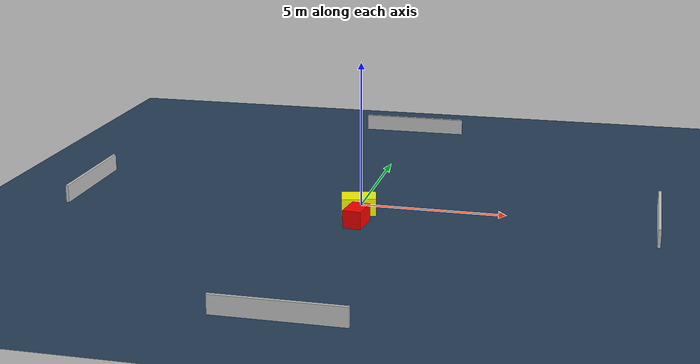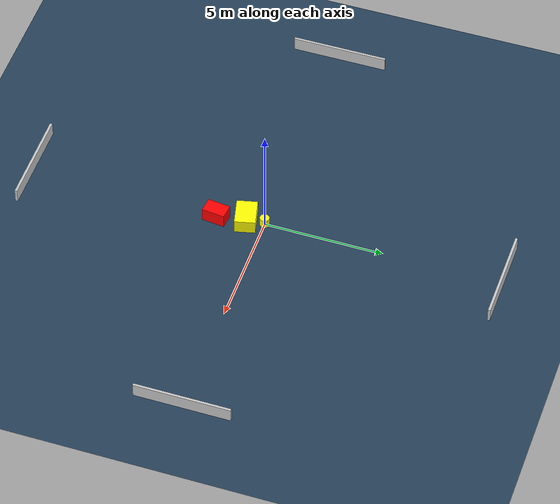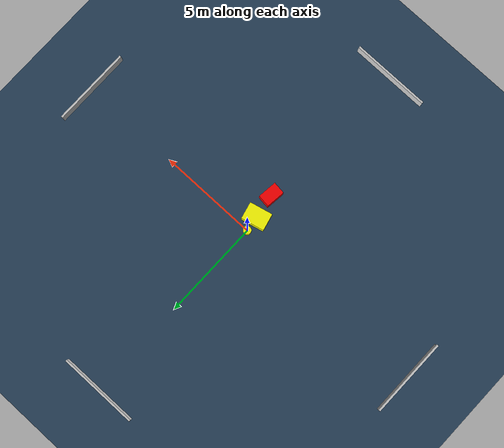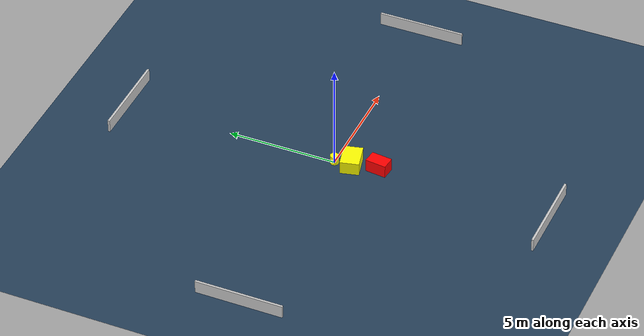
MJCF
<?xml version="1.0" ?>
<mujoco model="generated_environment">
  <option timestep="0.01" integrator="RK4" cone="elliptic"/>
  <default>
    <geom density="1"/>
  </default>
  <asset>
    <texture builtin="gradient" height="3072" name="skybox" rgb1="0.3 0.5 0.7" rgb2="0 0 0" type="skybox" width="512"/>
    <texture builtin="checker" height="300" name="groundplane" rgb1="0.2 0.3 0.4" rgb2="0.1 0.2 0.3" type="2d" width="300"/>
    <material name="groundplane" reflectance="0.2" texrepeat="5 5" texture="groundplane"/>
  </asset>
  <worldbody>
    <light dir="0 0 -1" directional="true" pos="0 0 1.5"/>
    <geom condim="3" friction="0.5 0.005 0.001" material="groundplane" name="floor" pos="0 0 0" size="0 0 0.05" type="plane"/>
    <body name="walls">
      <geom name="wall_1" condim="4" pos="-10.0 0.0 0.3" rgba="0.800000011920929 0.800000011920929 0.800000011920929 1.0" size="0.05 2.0 0.3" type="box"/>
      <geom name="wall_2" condim="4" pos="10.0 0.0 0.3" rgba="0.800000011920929 0.800000011920929 0.800000011920929 1.0" size="0.05 2.0 0.3" type="box"/>
      <geom name="wall_3" condim="4" pos="0.0 -10.0 0.3" rgba="0.800000011920929 0.800000011920929 0.800000011920929 1.0" size="2.0 0.05 0.3" type="box"/>
      <geom name="wall_4" condim="4" pos="0.0 10.0 0.3" rgba="0.800000011920929 0.800000011920929 0.800000011920929 1.0" size="2.0 0.05 0.3" type="box"/>
    </body>
    <body name="robot">
      <joint name="joint_x" type="slide" pos="0 0 0" axis="1 0 0"/>
      <joint name="joint_y" type="slide" pos="0 0 0" axis="0 1 0"/>
      <geom name="robot" type="cylinder" pos="0.0 0.0 0.2" size="0.2 0.2 0.0" mass="5.0" friction="1.0 0.005 0.0001" condim="4" rgba="1.0 1.0 0.0 1.0"/>
    </body>
    <body name="obstacle_1_movable">
      <geom name="obstacle_1_movable" condim="4" pos="0.09483881973147634 -0.7625114825382566 0.3" euler="0 0 13.582047650363984" friction="0.0 0.005 0.001" rgba="1.0 1.0 0.0 1.0" size="0.5820523752024838 0.4307221379640329 0.3" type="box" mass="0.1"/>
      <joint type="free"/>
    </body>
    <body name="obstacle_2_static">
      <geom name="obstacle_2_static" condim="4" pos="0.29008654771389575 -1.9736257486226176 0.3" euler="0 0 263.4546610774124" friction="0.0 0.005 0.001" rgba="1.0 0.0 0.0 1.0" size="0.47966890499465 0.30836034145332863 0.3" type="box"/>
    </body>
  </worldbody>
  <actuator>
    <motor name="actuator_x" joint="joint_x" gear="1" ctrlrange="-1 1"/>
    <motor name="actuator_y" joint="joint_y" gear="1" ctrlrange="-1 1"/>
  </actuator>
</mujoco>
